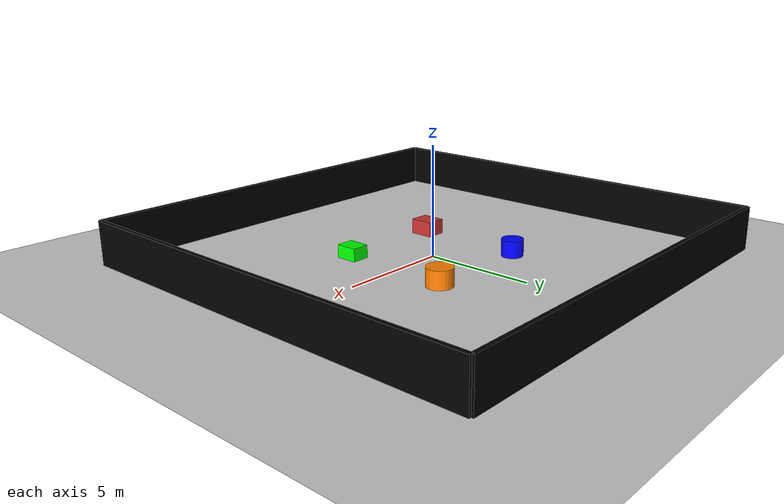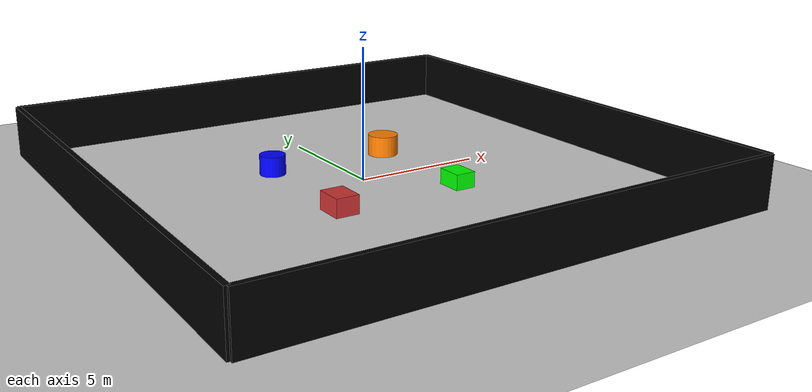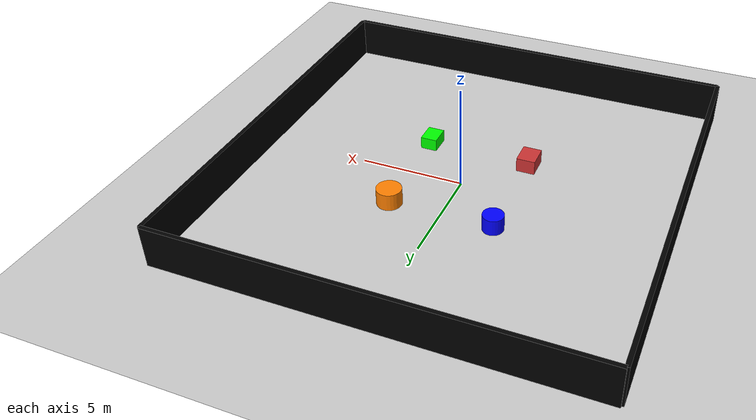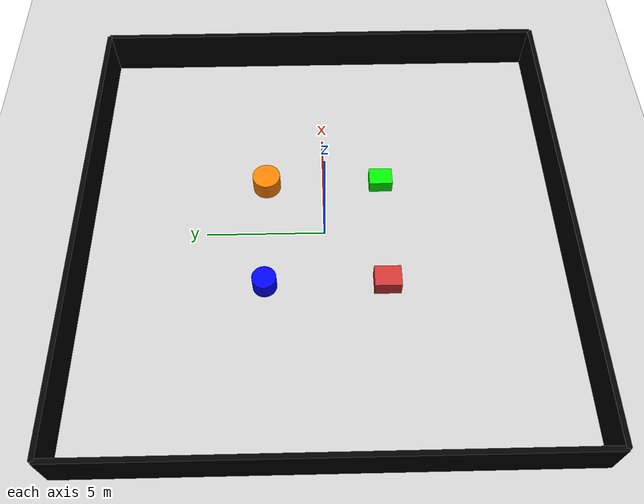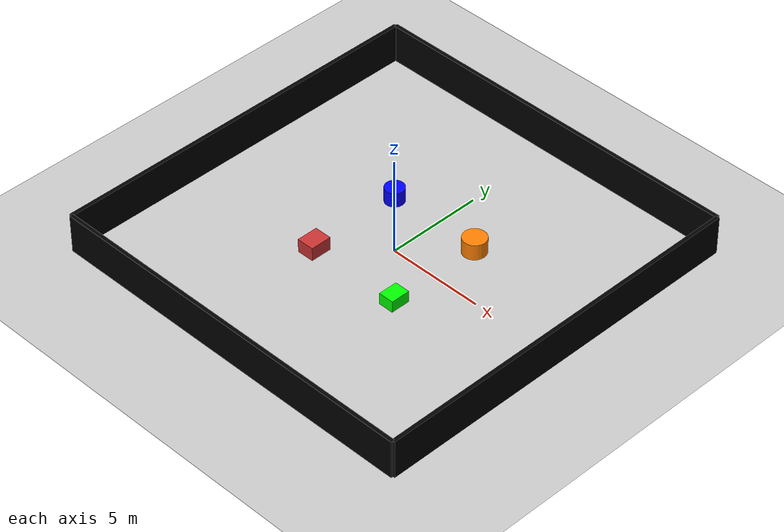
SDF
<?xml version="1.0" ?>
<sdf version="1.6">
  <world name="default">

    <!-- ─────────── ESCENA: iluminación & desactivar sombras ─────────── -->
<scene>
  <ambient>1 1 1 1</ambient>          <!-- Iluminación blanca -->
  <background>1 1 1 1</background>    <!-- Fondo blanco puro -->
  <shadows>false</shadows>
</scene>

    <!-- ─────────── PLUGINS ROS–GAZEBO ─────────── -->
    <plugin name="gazebo_ros_api_plugin" filename="libgazebo_ros_api_plugin.so"/>
    <plugin name="gazebo_ros_factory"  filename="libgazebo_ros_factory.so"/>
    <plugin name="gazebo_ros_state"    filename="libgazebo_ros_state.so"/>

    <!-- ─────────── SOL y SUELO ─────────── -->
    <include><uri>model://sun</uri></include>
    <include><uri>model://ground_plane</uri></include>

    <!-- ─────────── PAREDES 20x20 ─────────── -->
    <!-- Izquierda -->
    <model name="wall_left">
      <static>true</static>
      <pose>-10 0 1 0 0 0</pose>
      <link name="link">
        <collision name="collision"><geometry><box><size>0.2 20 2</size></box></geometry></collision>
        <visual    name="visual"><geometry><box><size>0.2 20 2</size></box></geometry>
          <material><ambient>0.0 0.0 0.0 1</ambient></material>
        </visual>
      </link>
    </model>
    <!-- Derecha -->
    <model name="wall_right">
      <static>true</static>
      <pose>10 0 1 0 0 0</pose>
      <link name="link">
        <collision name="collision"><geometry><box><size>0.2 20 2</size></box></geometry></collision>
        <visual    name="visual"><geometry><box><size>0.2 20 2</size></box></geometry>
          <material><ambient>0.0 0.0 0.0 1</ambient></material>
        </visual>
      </link>
    </model>
    <!-- Inferior -->
    <model name="wall_bottom">
      <static>true</static>
      <pose>0 -10 1 0 0 0</pose>
      <link name="link">
        <collision name="collision"><geometry><box><size>20 0.2 2</size></box></geometry></collision>
        <visual    name="visual"><geometry><box><size>20 0.2 2</size></box></geometry>
          <material><ambient>0.0 0.0 0.0 1</ambient></material>
        </visual>
      </link>
    </model>
    <!-- Superior -->
    <model name="wall_top">
      <static>true</static>
      <pose>0 10 1 0 0 0</pose>
      <link name="link">
        <collision name="collision"><geometry><box><size>20 0.2 2</size></box></geometry></collision>
        <visual    name="visual"><geometry><box><size>20 0.2 2</size></box></geometry>
          <material><ambient>0.0 0.0 0.0 1</ambient></material>
        </visual>
      </link>
    </model>

    <!-- ─────────── FÍSICA ─────────── -->
    <physics name="default_physics" type="ode">
      <real_time_factor>1.0</real_time_factor>
      <real_time_update_rate>1000</real_time_update_rate>
      <max_step_size>0.004</max_step_size>
      <use_real_time>false</use_real_time>
      <ode>
        <solver><type>quick</type><iters>40</iters><sor>1.3</sor></solver>
        <constraints><cfm>1e-5</cfm><erp>0.3</erp></constraints>
      </ode>
    </physics>

    <!-- ─────────── GUI ─────────── -->
    <gui fullscreen="0">
      <camera name="user_camera">
        <pose>0 -18 15 0.5 0.8 0</pose>
        <view_controller>orbit</view_controller>
        <projection_type>perspective</projection_type>
      </camera>
    </gui>

    <!-- ─────────── Obstáculos modelo pool ─────────── -->
    <model name="box_00">
      <static>false</static><kinematic>true</kinematic>
      <pose>-2.5 -2.5 0.35 0 0 0</pose>
      <link name="link">
        <collision name="col"><geometry><box><size>0.9 1.1 0.7</size></box></geometry></collision>
        <visual    name="vis"><geometry><box><size>0.9 1.1 0.7</size></box></geometry>
          <material><ambient>0.8 0.2 0.2 1</ambient></material>
        </visual>
      </link>
    </model>

    <!-- Repetir box_01…box_14 -->
    <model name="box_01">
      <static>false</static><kinematic>true</kinematic>
      <pose>2.5 -2.5 0.35 0 0 0</pose>
      <link name="link">
        <collision name="col"><geometry><box><size>0.8 1.0 0.6</size></box></geometry></collision>
        <visual    name="vis"><geometry><box><size>0.8 1.0 0.6</size></box></geometry>
          <material><ambient>0 1 0 1</ambient></material>
        </visual>
      </link>
    </model>

    <model name="box_02">
    <static>false</static><kinematic>true</kinematic>
    <pose>2.5 2.5 0.35 0 0 0</pose>
    <link name="link">
        <collision name="col">
        <geometry>
            <cylinder>
            <radius>0.6</radius>
            <length>0.9</length>
            </cylinder>
        </geometry>
        </collision>
        <visual name="vis">
        <geometry>
            <cylinder>
            <radius>0.6</radius>
            <length>0.9</length>
            </cylinder>
        </geometry>
        <material>
            <ambient>1 0.5 0 1</ambient>  <!-- Naranjo -->
        </material>
        </visual>
    </link>
    </model>

    <model name="box_03">
    <static>false</static><kinematic>true</kinematic>  <!-- O true si no se mueve -->
    <pose>-2.5 2.5 0.35 0 0 0</pose>
    <link name="link">
        <collision name="col">
        <geometry>
            <cylinder>
            <radius>0.5</radius>
            <length>0.8</length>  <!-- Altura del cilindro -->
            </cylinder>
        </geometry>
        </collision>
        <visual name="vis">
        <geometry>
            <cylinder>
            <radius>0.5</radius>
            <length>0.8</length>
            </cylinder>
        </geometry>
        <material>
            <ambient>0 0 1 1</ambient> <!-- Naranjo -->
        </material>
        </visual>
    </link>
    </model>

  </world>
</sdf>
